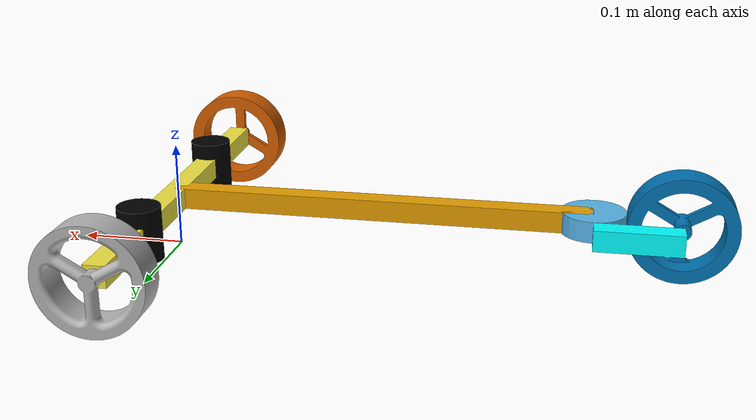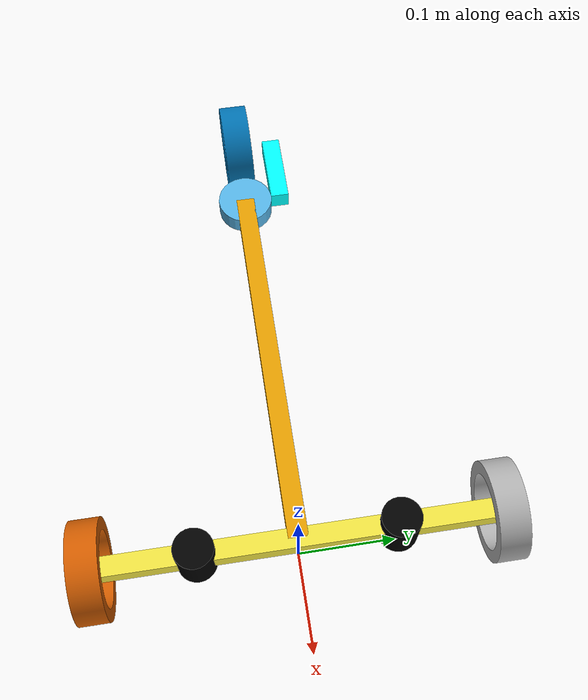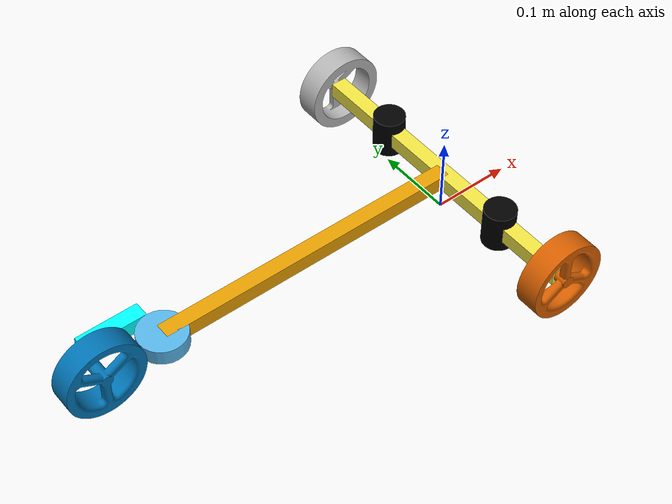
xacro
<?xml version="1.0"?>
<robot name="robot_2_0" xmlns:xacro="http://www.ros.org/wiki/xacro">

  <xacro:arg name="a" default="0.2"   />
  <xacro:arg name="b" default="0.4"   />
  <xacro:arg name="c" default="0.08"  />

  <xacro:arg name="r"     default="0.05"  />

  <xacro:arg name="sensor_1_x" default="0.0"  />
  <xacro:arg name="sensor_1_y" default="-0.1" />

  <xacro:arg name="sensor_2_x" default="0.0" />
  <xacro:arg name="sensor_2_y" default="0.1" />

  <xacro:property name="thickness"    value="0.02"/>
  <xacro:property name="radius"       value="$(arg r)"/>
  <xacro:property name="wheel_thick"  value="0.03"/>
  <xacro:property name="front_axle"   value="$(arg a)"/>
  <xacro:property name="trailing_offset" value="$(arg b)"/>
  <xacro:property name="castor_arm"   value="$(arg c)"/>

  <xacro:property name="sensor_1_x" value="$(arg sensor_1_x)"/>
  <xacro:property name="sensor_1_y" value="$(arg sensor_1_y)"/>

  <xacro:property name="sensor_2_x" value="$(arg sensor_2_x)"/>
  <xacro:property name="sensor_2_y" value="$(arg sensor_2_y)"/>

  <xacro:property name="sensor_radius" value="0.02"/>
  <xacro:property name="sensor_height" value="0.05"/>

  <xacro:property name="scale"         default="$(arg r)"/>

  <link name="map">
  </link>

  <link name="x_movement">
  </link>

  <link name="y_movement">
  </link>

  <link name="moving_platform">
    <visual>
        <origin xyz="0 0 0" rpy="0 0 0" />
        <geometry>
          <box size="${thickness} ${2*front_axle} ${thickness}"/>
        </geometry>
      </visual>
  </link>

  <!-- The frame of the wheel as indicated in the MOBRO course -->
  <link name="fixed_wheel_1_frame">
  </link>

  <!-- Wheel in the negative side of the moving platform y axis -->
  <link name="fixed_wheel_1">
    <visual>
      <origin xyz="0 ${.5*wheel_thick} 0" rpy="1.57075 0 0" />
      <geometry>
        <mesh filename="package://simulation_description/description/wheel.dae" scale="${0.001*scale/0.05} ${0.001*scale/0.05} 0.001"/>
      </geometry>
    </visual>
  </link>

  <!-- The frame of the wheel as indicated in the MOBRO course -->
  <link name="fixed_wheel_2_frame">
  </link>

  <!-- Wheel in the positive side of the moving platform y axis -->
  <link name="fixed_wheel_2">
    <visual>
      <origin xyz="0 -${.5*wheel_thick} 0" rpy="-1.57075 0 0" />
      <geometry>
        <mesh filename="package://simulation_description/description/wheel.dae" scale="${0.001*scale/0.05} ${0.001*scale/0.05} 0.001"/>
      </geometry>
    </visual>
  </link>

  <!-- Beam from the moving platform frame origin to the castor joint -->
  <link name="trailing_offset">
    <visual>
      <origin xyz="0 0 0" rpy="0 0 0" />
      <geometry>
        <box size="${trailing_offset} ${thickness}  ${thickness}"/>
      </geometry>
    </visual>
  </link>

  <!-- The castor joint that is a revolute one -->
  <link name="castor_cylinder">
    <visual>
      <origin xyz="0 0 0" rpy="0 0 0" />
      <geometry>
        <cylinder length="${thickness}" radius="${wheel_thick}"/>
      </geometry>
    </visual>
  </link>

  <!-- Part connecting the castor wheel to the revolute joint -->
  <link name="castor_arm">
    <visual>
      <origin xyz="${-0.5*castor_arm} 0 0" rpy="0 0 0" />
      <geometry>
        <box size="${castor_arm} ${thickness}  ${thickness}"/>
      </geometry>
      <material name="Cyan">
        <color rgba="0 1.0 1.0 1.0"/>
      </material>
    </visual>
  </link>

  <!-- The frame of the wheel as indicated in the MOBRO course -->
  <link name="castor_wheel_frame">
  </link>

  <!-- The robot castor wheel (wheel 3) -->
  <link name="castor_wheel">
    <visual>
      <origin xyz="0 -${.5*wheel_thick} 0" rpy="-1.57075 0 0" />
      <geometry>
        <mesh filename="package://simulation_description/description/wheel.dae" scale="${0.001*scale/0.05} ${0.001*scale/0.05} 0.001"/>
      </geometry>
    </visual>
  </link>

  <!-- Definition of the sensor one -->
  <link name="sensor_1">
     <visual>
       <origin xyz="0 0 0" rpy="0 0 0" />
       <geometry>
         <cylinder length="${sensor_height}" radius="${sensor_radius}"/>
       </geometry>
       <material name="Black">
         <color rgba="0 0 0 1.0"/>
       </material>
     </visual>
   </link>

   <!-- Definition of the sensor two -->
   <link name="sensor_2">
      <visual>
        <origin xyz="0 0 0" rpy="0 0 0" />
        <geometry>
          <cylinder length="${sensor_height}" radius="${sensor_radius}"/>
        </geometry>
        <material name="Black">
          <color rgba="0 0 0 1.0"/>
        </material>
      </visual>
    </link>

  <!--                Joints                  -->

    <!-- To make it possible to move the robot from the Cpp -->
    <joint name="move_along_x" type="prismatic">
      <parent link="map"/>
      <child link="x_movement"/>
      <limit effort="1000.0" lower="-10" upper="10" velocity="0.5"/>
      <axis xyz="1 0 0"/>
      <origin rpy="0 0 0" xyz="0 0 0"/>
    </joint>

    <!-- To make it possible to move the robot from the Cpp -->
    <joint name="move_along_y" type="prismatic">
      <parent link="x_movement"/>
      <child link="y_movement"/>
      <limit effort="1000.0" lower="-10" upper="10" velocity="0.5"/>
      <axis xyz="0 1 0"/>
      <origin rpy="0 0 0" xyz="0 0 0"/>
    </joint>

    <!-- To make it possible to rotate the robot from the Cpp -->
    <joint name="heading" type="continuous">
      <parent link="y_movement"/>
      <child link="moving_platform"/>
      <axis xyz="0 0 1"/>
      <origin rpy="0 0 0" xyz="0 0 ${radius}"/>
    </joint>

    <!-- To make it possible to rotate the robot fixed wheel one from the cpp -->
    <joint name="fixed_wheel_1_joint" type="continuous">
      <axis rpy="0 0 0" xyz="0 1 0"/>
      <parent link="fixed_wheel_1_frame"/>
      <child link="fixed_wheel_1"/>
      <origin rpy="0 0 0" xyz="0 0 0"/>
    </joint>

    <!-- To make it possible to rotate the robot fixed wheel two from the cpp -->
    <joint name="fixed_wheel_2_joint" type="continuous">
      <axis rpy="0 0 0" xyz="0 1 0"/>
      <parent link="fixed_wheel_2_frame"/>
      <child link="fixed_wheel_2"/>
      <origin rpy="0 0 0" xyz="0 0 0"/>
    </joint>

    <!-- To make it possible to rotate the robot castor wheel from the cpp -->
    <joint name="castor_wheel_joint" type="continuous">
      <axis rpy="0 0 0" xyz="0 1 0"/>
      <parent link="castor_wheel_frame"/>
      <child link="castor_wheel"/>
      <origin rpy="0 0 0" xyz="0 0 0"/>
    </joint>

    <!-- To make it possible to update the beta angle form the cpp -->
    <joint name="castor_joint" type="revolute">
      <limit lower="-1.57" upper="1.57" effort="10" velocity="3"/>
      <parent link="trailing_offset"/>
      <child link="castor_cylinder"/>
      <origin xyz="-${.5*trailing_offset} 0 0" rpy="0 0 0" />
      <axis xyz="0 0 1" />
    </joint>

    <!--                Joints   FIXED               -->

    <!-- Attach the frame to the moving platform -->
    <joint name="place_fixed_wheel_1_frame" type="fixed">
      <parent link="moving_platform"/>
      <child link="fixed_wheel_1_frame"/>
      <origin rpy="0 0 0" xyz="0 -${front_axle} 0"/>
    </joint>

    <!-- Attach the frame to the moving platform -->
    <joint name="place_fixed_wheel_2_frame" type="fixed">
      <parent link="moving_platform"/>
      <child link="fixed_wheel_2_frame"/>
      <origin rpy="0 0 0" xyz="0 ${front_axle} 0"/>
    </joint>

    <!-- Attach the frame to the moving platform -->
    <joint name="place_castor_wheel_frame" type="fixed">
      <parent link="castor_arm"/>
      <child link="castor_wheel_frame"/>
      <origin rpy="0 0 3.14159" xyz="-${castor_arm} -${wheel_thick + .5*thickness} 0"/>
    </joint>

    <!-- Fix the beam connecting the moving platform with the castor joint -->
    <joint name="moving_platform__to__trailing_offset" type="fixed">
      <axis rpy="0 0 0" xyz="0 1 0"/>
      <parent link="moving_platform"/>
      <child link="trailing_offset"/>
      <origin rpy="0 0 0" xyz="-${.5*trailing_offset} 0 0"/>
    </joint>

    <!-- Connect the revolute joint to the arm of the castor wheel -->
    <joint name="castor_cylinder__to__castor_arm" type="fixed">
      <axis rpy="0 0 0" xyz="0 1 0"/>
      <parent link="castor_cylinder"/>
      <child link="castor_arm"/>
      <origin rpy="0 0 0" xyz="0 ${wheel_thick + .5*thickness} 0"/>
    </joint>

    <!-- Attach the sensor one to the robot body -->
    <joint name="moving_platform__to__sensor_1" type="fixed">
      <parent link="moving_platform"/>
      <child link="sensor_1"/>
      <origin rpy="0 0 0" xyz="${sensor_1_x} ${sensor_1_y} 0"/>
    </joint>

    <!-- Attach the sensor two to the robot body -->
    <joint name="moving_platform__to__sensor_2" type="fixed">
      <parent link="moving_platform"/>
      <child link="sensor_2"/>
      <origin rpy="0 0 0" xyz="${sensor_2_x} ${sensor_2_y} 0"/>
    </joint>

</robot>
